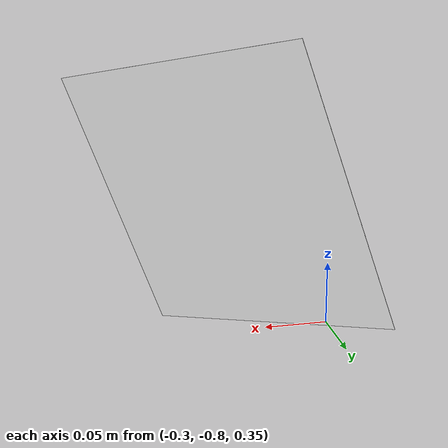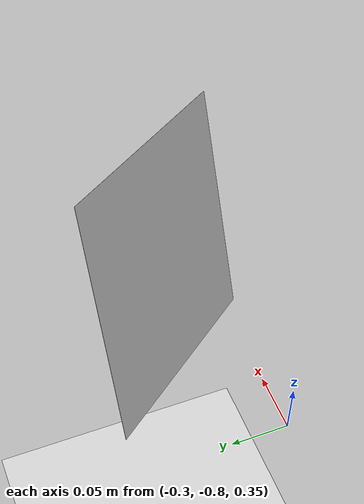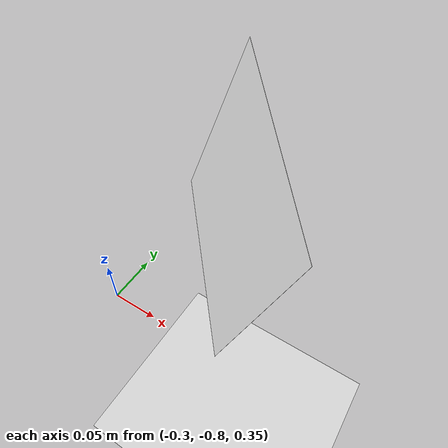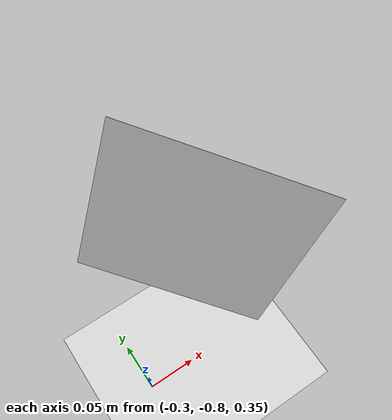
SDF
<?xml version="1.0" ?>
<sdf version="1.7">

  <world name="aruco_world">

    <include>
      <uri>https://fuel.gazebosim.org/1.0/OpenRobotics/models/Sun</uri>
    </include>

    <include>
      <uri>https://fuel.gazebosim.org/1.0/OpenRobotics/models/Ground Plane</uri>
    </include>

    <include>
      <uri>
        model://arucotag
      </uri>
      <name>arucotag</name>
      <pose>-0.2 -0.73 0.48 2.48 1.22 -3.05</pose>
    </include>

    <gravity>0 0 -9.81</gravity>

    <gui fullscreen='0'>
      <camera name='user_camera'>
        <pose>4.927360 -4.376610 3.740080 0.000000 0.275643 2.356190</pose>
        <view_controller>orbit</view_controller>
      </camera>
    </gui>

  </world>
</sdf>

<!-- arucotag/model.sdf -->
<sdf version="1.7">
  <model name="arucotag">
    <static>true</static>
    <link name="base_link">
      <visual name="aruco_visual">
        <geometry>
          <plane>
            <normal>0 0 1</normal>
            <size>0.2 0.2</size>
          </plane>
        </geometry>
        <material>
          <ambient>1 1 1 1</ambient>
          <diffuse>1 1 1 1</diffuse>
          <specular>0 0 0 1</specular>
          <emissive>0 0 0 1</emissive>
          <pbr>
            <metal>
              <albedo_map>model://arucotag/aruco-201.png</albedo_map>
            </metal>
          </pbr>
        </material>
      </visual>
    </link>
  </model>
</sdf>
